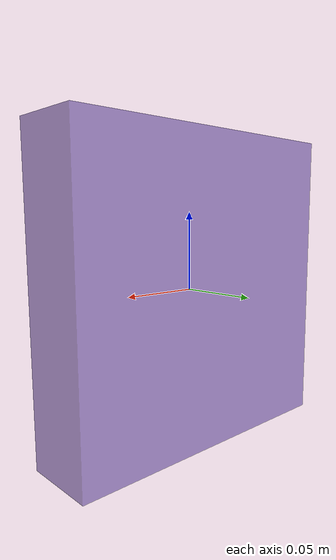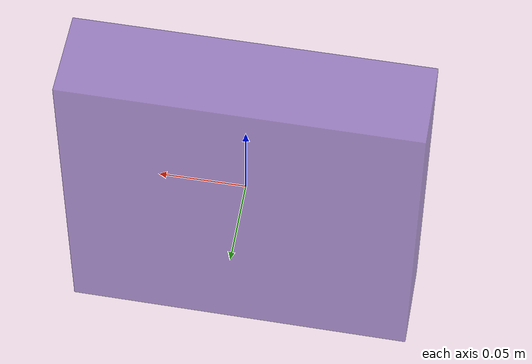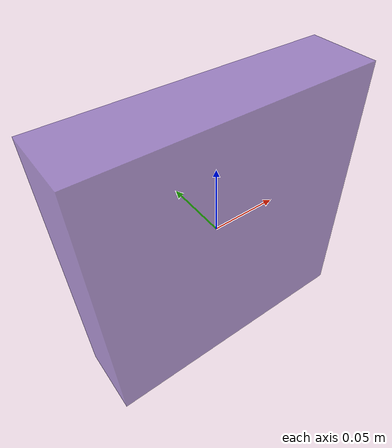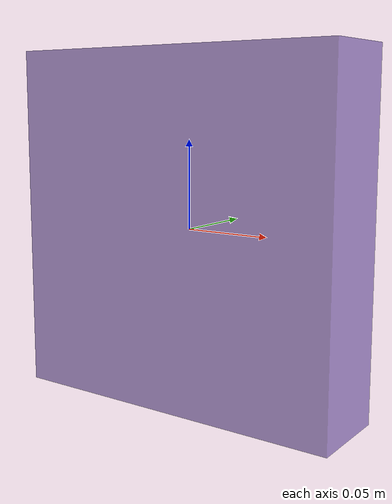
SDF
<?xml version="1.0"?>
<sdf version="1.7">
  <model name="conveyor_gripper">
    <link name="gripper">
      <pose>0 0 0 0 0 0</pose>
      <visual name="gripper_visual">
        <geometry>
          <box>
            <size>0.2 0.05 0.2</size>
          </box>
        </geometry>
        <material>
          <ambient>0.43 0.3 0.7 0.6</ambient>
          <diffuse>0.43 0.3 0.7 0.6</diffuse>
        </material>
      </visual>
      <collision name="gripper_collision">
        <geometry>
          <box>
            <size>0.2 0.05 0.2</size>
          </box>
        </geometry>
        <drake:proximity_properties>
          <drake:compliant_hydroelastic/>
          <drake:hydroelastic_modulus>1e6</drake:hydroelastic_modulus>
          <drake:mesh_resolution_hint>0.01</drake:mesh_resolution_hint>
          <drake:mu_dynamic>1.4</drake:mu_dynamic>
          <drake:mu_static>1.5</drake:mu_static>
          <drake:hunt_crossley_dissipation>5</drake:hunt_crossley_dissipation>
          <drake:surface_speed>0.5</drake:surface_speed>
          <drake:surface_velocity_normal>0 1 0</drake:surface_velocity_normal>
        </drake:proximity_properties>
      </collision>
    </link>

    <!-- Links for joints-->
    <link name="base_link"/>
    <link name="conveyor_slider_x"/>
    <link name="conveyor_slider_y"/>
    <link name="conveyor_hinge_x"/>
    <link name="conveyor_hinge_y"/>

    <!-- Translation along X -->
    <joint name="conveyor_prismatic_x" type="prismatic">
      <parent>base_link</parent>
      <child>conveyor_slider_x</child>
      <pose>0 0 0 0 0 0</pose>
      <axis>
        <xyz>1 0 0</xyz>
        <limit>
          <effort>1</effort>
          <lower>-2</lower>
          <upper>2</upper>
        </limit>
      </axis>
    </joint>

    <!-- Rotation along X -->
    <joint name="conveyor_revolute_x" type="revolute">
      <parent>conveyor_slider_x</parent>
      <child>conveyor_hinge_x</child>
      <pose>0 0 0 0 0 0</pose>
      <axis>
        <xyz>1 0 0</xyz>
        <limit>
          <effort>1</effort>
          <lower>-1.2</lower>
          <upper>1.2</upper>
        </limit>
      </axis>
    </joint>

    <!-- Translation along Y -->
    <joint name="conveyor_prismatic_y" type="prismatic">
      <parent>conveyor_hinge_x</parent>
      <child>conveyor_slider_y</child>
      <pose>0 0 0 0 0 0</pose>
      <axis>
        <xyz>0 1 0</xyz>
        <limit>
          <!-- This joint is actuated. -->
          <effort>1</effort>
          <lower>-2</lower>
          <upper>2</upper>
        </limit>
      </axis>
    </joint>

    <!-- Rotation around Y -->
    <joint name="conveyor_revolute_y" type="revolute">
      <parent>conveyor_slider_y</parent>
      <child>conveyor_hinge_y</child>
      <pose>0 0 0 0 0 0</pose>
      <axis>
        <xyz>0 1 0</xyz>
        <limit>
          <!-- This joint is not actuated. -->
          <effort>1</effort>
          <lower>-1.2</lower>
          <upper>1.2</upper>
        </limit>
      </axis>
    </joint>

    <!-- Translation along Z -->
    <joint name="conveyor_prismatic_z" type="prismatic">
      <parent>conveyor_hinge_y</parent>
      <child>gripper</child>
      <pose>0 0 0 0 0 0</pose>
      <axis>
        <xyz>0 0 1</xyz>
        <limit>
          <effort>1</effort>
          <lower>-2</lower>
          <upper>2</upper>
        </limit>
      </axis>
    </joint>

  </model>
</sdf>
